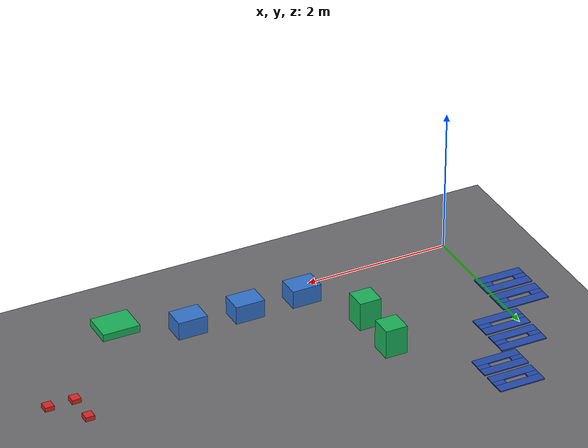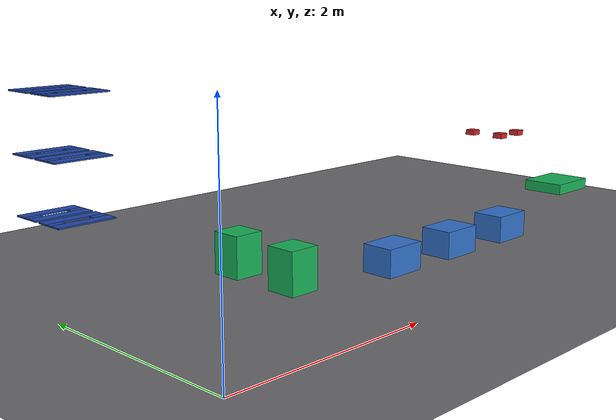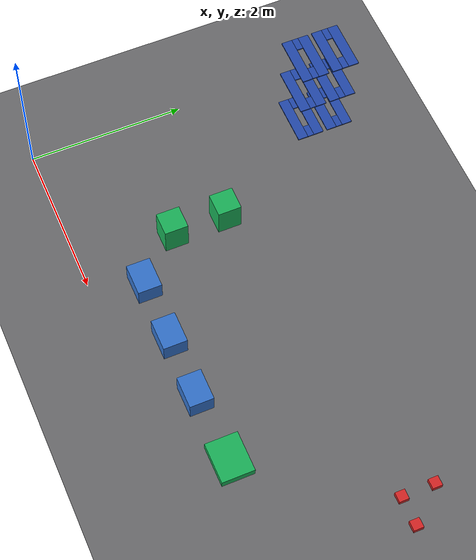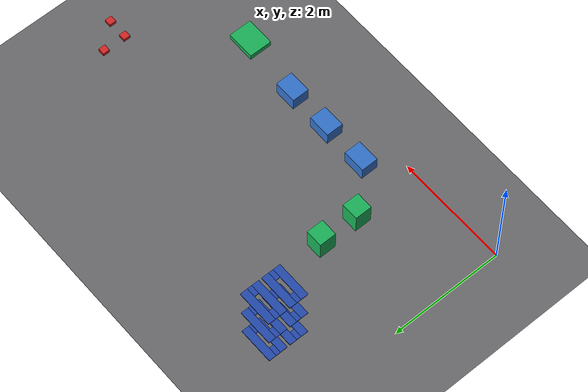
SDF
<sdf version="1.11">
 <world name="factory">
  <model name="ground_plane">
   <static>true</static>
   <link name="link">
    <collision name="collision">
     <geometry><plane><normal>0 0 1</normal><size>100 100</size></plane></geometry>
    </collision>
    <visual name="visual">
     <geometry><plane><normal>0 0 1</normal><size>100 100</size></plane></geometry>
     <material>
      <ambient>0.8 0.8 0.8 1</ambient>
      <diffuse>0.42 0.42 0.43 1</diffuse>
      <specular>0.04 0.04 0.04 1</specular>
      <shininess>4</shininess>
     </material>
    </visual>
   </link>
  </model>
  <model name="rl_objects">
   <static>false</static>
   <link name="part_a1">
    <pose>6.2 2.1 0.8 0 0 0</pose>
    <visual name="visual">
     <geometry><box><size>0.12 0.12 0.06</size></box></geometry>
     <material>
      <ambient>0.850 0.150 0.150 1.000</ambient>
      <diffuse>0.850 0.150 0.150 1.000</diffuse>
      <specular>0.30 0.30 0.30 1</specular>
      <shininess>24</shininess>
     </material>
    </visual>
    <collision name="collision"><geometry><box><size>0.12 0.12 0.06</size></box></geometry></collision>
    <inertial>
     <mass>1.2</mass>
     <inertia>
      <ixx>0.001800</ixx>
      <iyy>0.001800</iyy>
      <izz>0.002880</izz>
      <ixy>0</ixy>
      <ixz>0</ixz>
      <iyz>0</iyz>
     </inertia>
    </inertial>
   </link>
   <link name="part_a2">
    <pose>6.55 2.1 0.8 0 0 0</pose>
    <visual name="visual">
     <geometry><box><size>0.12 0.12 0.06</size></box></geometry>
     <material>
      <ambient>0.850 0.150 0.150 1.000</ambient>
      <diffuse>0.850 0.150 0.150 1.000</diffuse>
      <specular>0.30 0.30 0.30 1</specular>
      <shininess>24</shininess>
     </material>
    </visual>
    <collision name="collision"><geometry><box><size>0.12 0.12 0.06</size></box></geometry></collision>
    <inertial>
     <mass>1.2</mass>
     <inertia>
      <ixx>0.001800</ixx>
      <iyy>0.001800</iyy>
      <izz>0.002880</izz>
      <ixy>0</ixy>
      <ixz>0</ixz>
      <iyz>0</iyz>
     </inertia>
    </inertial>
   </link>
   <link name="part_a3">
    <pose>6.2 2.5 0.8 0 0 0</pose>
    <visual name="visual">
     <geometry><box><size>0.12 0.12 0.06</size></box></geometry>
     <material>
      <ambient>0.850 0.150 0.150 1.000</ambient>
      <diffuse>0.850 0.150 0.150 1.000</diffuse>
      <specular>0.30 0.30 0.30 1</specular>
      <shininess>24</shininess>
     </material>
    </visual>
    <collision name="collision"><geometry><box><size>0.12 0.12 0.06</size></box></geometry></collision>
    <inertial>
     <mass>1.2</mass>
     <inertia>
      <ixx>0.001800</ixx>
      <iyy>0.001800</iyy>
      <izz>0.002880</izz>
      <ixy>0</ixy>
      <ixz>0</ixz>
      <iyz>0</iyz>
     </inertia>
    </inertial>
   </link>
   <link name="stock_s1">
    <pose>2.4 0.6 0.35 0 0 0</pose>
    <visual name="visual">
     <geometry><box><size>0.4 0.3 0.25</size></box></geometry>
     <material>
      <ambient>0.200 0.450 0.800 1.000</ambient>
      <diffuse>0.200 0.450 0.800 1.000</diffuse>
      <specular>0.30 0.30 0.30 1</specular>
      <shininess>24</shininess>
     </material>
    </visual>
    <collision name="collision"><geometry><box><size>0.4 0.3 0.25</size></box></geometry></collision>
    <inertial>
     <mass>4.0</mass>
     <inertia>
      <ixx>0.050833</ixx>
      <iyy>0.074167</iyy>
      <izz>0.083333</izz>
      <ixy>0</ixy>
      <ixz>0</ixz>
      <iyz>0</iyz>
     </inertia>
    </inertial>
   </link>
   <link name="stock_s2">
    <pose>3.2 0.6 0.35 0 0 0</pose>
    <visual name="visual">
     <geometry><box><size>0.4 0.3 0.25</size></box></geometry>
     <material>
      <ambient>0.200 0.450 0.800 1.000</ambient>
      <diffuse>0.200 0.450 0.800 1.000</diffuse>
      <specular>0.30 0.30 0.30 1</specular>
      <shininess>24</shininess>
     </material>
    </visual>
    <collision name="collision"><geometry><box><size>0.4 0.3 0.25</size></box></geometry></collision>
    <inertial>
     <mass>4.0</mass>
     <inertia>
      <ixx>0.050833</ixx>
      <iyy>0.074167</iyy>
      <izz>0.083333</izz>
      <ixy>0</ixy>
      <ixz>0</ixz>
      <iyz>0</iyz>
     </inertia>
    </inertial>
   </link>
   <link name="stock_s3">
    <pose>4 0.6 0.35 0 0 0</pose>
    <visual name="visual">
     <geometry><box><size>0.4 0.3 0.25</size></box></geometry>
     <material>
      <ambient>0.200 0.450 0.800 1.000</ambient>
      <diffuse>0.200 0.450 0.800 1.000</diffuse>
      <specular>0.30 0.30 0.30 1</specular>
      <shininess>24</shininess>
     </material>
    </visual>
    <collision name="collision"><geometry><box><size>0.4 0.3 0.25</size></box></geometry></collision>
    <inertial>
     <mass>4.0</mass>
     <inertia>
      <ixx>0.050833</ixx>
      <iyy>0.074167</iyy>
      <izz>0.083333</izz>
      <ixy>0</ixy>
      <ixz>0</ixz>
      <iyz>0</iyz>
     </inertia>
    </inertial>
   </link>
   <link name="target_bin_a">
    <pose>1.8 1.2 0.25 0 0 0</pose>
    <visual name="visual">
     <geometry><box><size>0.3 0.3 0.4</size></box></geometry>
     <material>
      <ambient>0.100 0.700 0.350 1.000</ambient>
      <diffuse>0.100 0.700 0.350 1.000</diffuse>
      <specular>0.30 0.30 0.30 1</specular>
      <shininess>24</shininess>
     </material>
    </visual>
    <collision name="collision"><geometry><box><size>0.3 0.3 0.4</size></box></geometry></collision>
    <inertial>
     <mass>1.0</mass>
     <inertia>
      <ixx>0.020833</ixx>
      <iyy>0.020833</iyy>
      <izz>0.015000</izz>
      <ixy>0</ixy>
      <ixz>0</ixz>
      <iyz>0</iyz>
     </inertia>
    </inertial>
   </link>
   <link name="target_bin_b">
    <pose>1.8 1.9 0.25 0 0 0</pose>
    <visual name="visual">
     <geometry><box><size>0.3 0.3 0.4</size></box></geometry>
     <material>
      <ambient>0.100 0.700 0.350 1.000</ambient>
      <diffuse>0.100 0.700 0.350 1.000</diffuse>
      <specular>0.30 0.30 0.30 1</specular>
      <shininess>24</shininess>
     </material>
    </visual>
    <collision name="collision"><geometry><box><size>0.3 0.3 0.4</size></box></geometry></collision>
    <inertial>
     <mass>1.0</mass>
     <inertia>
      <ixx>0.020833</ixx>
      <iyy>0.020833</iyy>
      <izz>0.015000</izz>
      <ixy>0</ixy>
      <ixz>0</ixz>
      <iyz>0</iyz>
     </inertia>
    </inertial>
   </link>
   <link name="target_shelf">
    <pose>5 0.6 0.6 0 0 0</pose>
    <visual name="visual">
     <geometry><box><size>0.5 0.4 0.1</size></box></geometry>
     <material>
      <ambient>0.100 0.700 0.350 1.000</ambient>
      <diffuse>0.100 0.700 0.350 1.000</diffuse>
      <specular>0.30 0.30 0.30 1</specular>
      <shininess>24</shininess>
     </material>
    </visual>
    <collision name="collision"><geometry><box><size>0.5 0.4 0.1</size></box></geometry></collision>
    <inertial>
     <mass>1.0</mass>
     <inertia>
      <ixx>0.014167</ixx>
      <iyy>0.021667</iyy>
      <izz>0.034167</izz>
      <ixy>0</ixy>
      <ixz>0</ixz>
      <iyz>0</iyz>
     </inertia>
    </inertial>
   </link>
  </model>
  <model name="safety_zones">
   <static>true</static>
   <link name="zone-arms-cell"><pose>6.4013 2.6979 1.1508 0 0 0</pose></link>
   <link name="zone-arms-reach"><pose>6.4013 2.6979 1.1508 0 0 0</pose></link>
   <link name="zone-conveyor-cell"><pose>6.0730 2.3373 1.0287 0 0 0</pose></link>
   <link name="zone-fabrication-floor"><pose>3.9370 2.4155 1.0287 0 0 0</pose></link>
  </model>
  <model name="fridge_conveyor">
   <static>true</static>
   <link name="belt_frame">
    <visual name="fridge_freezer_l0_belt0">
     <geometry><box><size>0.62 0.13 0.014</size></box></geometry>
     <pose>1.01 3.165 0.45 0 0 0</pose>
     <material>
      <ambient>0.04 0.08 0.18 1</ambient>
      <diffuse>0.14 0.29 0.68 1</diffuse>
      <specular>0.30 0.32 0.36 1</specular>
      <shininess>32</shininess>
     </material>
    </visual>
    <visual name="fridge_freezer_l0_belt1">
     <geometry><box><size>0.62 0.13 0.014</size></box></geometry>
     <pose>1.01 3.375 0.45 0 0 0</pose>
     <material>
      <ambient>0.04 0.08 0.18 1</ambient>
      <diffuse>0.14 0.29 0.68 1</diffuse>
      <specular>0.30 0.32 0.36 1</specular>
      <shininess>32</shininess>
     </material>
    </visual>
    <visual name="fridge_freezer_l0_ret0">
     <geometry><box><size>0.16 0.08 0.014</size></box></geometry>
     <pose>0.78 3.27 0.45 0 0 0</pose>
     <material>
      <ambient>0.04 0.08 0.18 1</ambient>
      <diffuse>0.14 0.29 0.68 1</diffuse>
      <specular>0.30 0.32 0.36 1</specular>
      <shininess>32</shininess>
     </material>
    </visual>
    <visual name="fridge_freezer_l0_ret1">
     <geometry><box><size>0.16 0.08 0.014</size></box></geometry>
     <pose>1.24 3.27 0.45 0 0 0</pose>
     <material>
      <ambient>0.04 0.08 0.18 1</ambient>
      <diffuse>0.14 0.29 0.68 1</diffuse>
      <specular>0.30 0.32 0.36 1</specular>
      <shininess>32</shininess>
     </material>
    </visual>
    <visual name="fridge_freezer_l1_belt0">
     <geometry><box><size>0.62 0.13 0.014</size></box></geometry>
     <pose>1.01 3.555 0.45 0 0 0</pose>
     <material>
      <ambient>0.04 0.08 0.18 1</ambient>
      <diffuse>0.14 0.29 0.68 1</diffuse>
      <specular>0.30 0.32 0.36 1</specular>
      <shininess>32</shininess>
     </material>
    </visual>
    <visual name="fridge_freezer_l1_belt1">
     <geometry><box><size>0.62 0.13 0.014</size></box></geometry>
     <pose>1.01 3.765 0.45 0 0 0</pose>
     <material>
      <ambient>0.04 0.08 0.18 1</ambient>
      <diffuse>0.14 0.29 0.68 1</diffuse>
      <specular>0.30 0.32 0.36 1</specular>
      <shininess>32</shininess>
     </material>
    </visual>
    <visual name="fridge_freezer_l1_ret0">
     <geometry><box><size>0.16 0.08 0.014</size></box></geometry>
     <pose>0.78 3.66 0.45 0 0 0</pose>
     <material>
      <ambient>0.04 0.08 0.18 1</ambient>
      <diffuse>0.14 0.29 0.68 1</diffuse>
      <specular>0.30 0.32 0.36 1</specular>
      <shininess>32</shininess>
     </material>
    </visual>
    <visual name="fridge_freezer_l1_ret1">
     <geometry><box><size>0.16 0.08 0.014</size></box></geometry>
     <pose>1.24 3.66 0.45 0 0 0</pose>
     <material>
      <ambient>0.04 0.08 0.18 1</ambient>
      <diffuse>0.14 0.29 0.68 1</diffuse>
      <specular>0.30 0.32 0.36 1</specular>
      <shininess>32</shininess>
     </material>
    </visual>
    <visual name="fridge_fridge_l0_belt0">
     <geometry><box><size>0.62 0.13 0.014</size></box></geometry>
     <pose>1.01 3.165 1.05 0 0 0</pose>
     <material>
      <ambient>0.04 0.08 0.18 1</ambient>
      <diffuse>0.14 0.29 0.68 1</diffuse>
      <specular>0.30 0.32 0.36 1</specular>
      <shininess>32</shininess>
     </material>
    </visual>
    <visual name="fridge_fridge_l0_belt1">
     <geometry><box><size>0.62 0.13 0.014</size></box></geometry>
     <pose>1.01 3.375 1.05 0 0 0</pose>
     <material>
      <ambient>0.04 0.08 0.18 1</ambient>
      <diffuse>0.14 0.29 0.68 1</diffuse>
      <specular>0.30 0.32 0.36 1</specular>
      <shininess>32</shininess>
     </material>
    </visual>
    <visual name="fridge_fridge_l0_ret0">
     <geometry><box><size>0.16 0.08 0.014</size></box></geometry>
     <pose>0.78 3.27 1.05 0 0 0</pose>
     <material>
      <ambient>0.04 0.08 0.18 1</ambient>
      <diffuse>0.14 0.29 0.68 1</diffuse>
      <specular>0.30 0.32 0.36 1</specular>
      <shininess>32</shininess>
     </material>
    </visual>
    <visual name="fridge_fridge_l0_ret1">
     <geometry><box><size>0.16 0.08 0.014</size></box></geometry>
     <pose>1.24 3.27 1.05 0 0 0</pose>
     <material>
      <ambient>0.04 0.08 0.18 1</ambient>
      <diffuse>0.14 0.29 0.68 1</diffuse>
      <specular>0.30 0.32 0.36 1</specular>
      <shininess>32</shininess>
     </material>
    </visual>
    <visual name="fridge_fridge_l1_belt0">
     <geometry><box><size>0.62 0.13 0.014</size></box></geometry>
     <pose>1.01 3.555 1.05 0 0 0</pose>
     <material>
      <ambient>0.04 0.08 0.18 1</ambient>
      <diffuse>0.14 0.29 0.68 1</diffuse>
      <specular>0.30 0.32 0.36 1</specular>
      <shininess>32</shininess>
     </material>
    </visual>
    <visual name="fridge_fridge_l1_belt1">
     <geometry><box><size>0.62 0.13 0.014</size></box></geometry>
     <pose>1.01 3.765 1.05 0 0 0</pose>
     <material>
      <ambient>0.04 0.08 0.18 1</ambient>
      <diffuse>0.14 0.29 0.68 1</diffuse>
      <specular>0.30 0.32 0.36 1</specular>
      <shininess>32</shininess>
     </material>
    </visual>
    <visual name="fridge_fridge_l1_ret0">
     <geometry><box><size>0.16 0.08 0.014</size></box></geometry>
     <pose>0.78 3.66 1.05 0 0 0</pose>
     <material>
      <ambient>0.04 0.08 0.18 1</ambient>
      <diffuse>0.14 0.29 0.68 1</diffuse>
      <specular>0.30 0.32 0.36 1</specular>
      <shininess>32</shininess>
     </material>
    </visual>
    <visual name="fridge_fridge_l1_ret1">
     <geometry><box><size>0.16 0.08 0.014</size></box></geometry>
     <pose>1.24 3.66 1.05 0 0 0</pose>
     <material>
      <ambient>0.04 0.08 0.18 1</ambient>
      <diffuse>0.14 0.29 0.68 1</diffuse>
      <specular>0.30 0.32 0.36 1</specular>
      <shininess>32</shininess>
     </material>
    </visual>
    <visual name="fridge_pantry_l0_belt0">
     <geometry><box><size>0.62 0.13 0.014</size></box></geometry>
     <pose>1.01 3.165 1.65 0 0 0</pose>
     <material>
      <ambient>0.04 0.08 0.18 1</ambient>
      <diffuse>0.14 0.29 0.68 1</diffuse>
      <specular>0.30 0.32 0.36 1</specular>
      <shininess>32</shininess>
     </material>
    </visual>
    <visual name="fridge_pantry_l0_belt1">
     <geometry><box><size>0.62 0.13 0.014</size></box></geometry>
     <pose>1.01 3.375 1.65 0 0 0</pose>
     <material>
      <ambient>0.04 0.08 0.18 1</ambient>
      <diffuse>0.14 0.29 0.68 1</diffuse>
      <specular>0.30 0.32 0.36 1</specular>
      <shininess>32</shininess>
     </material>
    </visual>
    <visual name="fridge_pantry_l0_ret0">
     <geometry><box><size>0.16 0.08 0.014</size></box></geometry>
     <pose>0.78 3.27 1.65 0 0 0</pose>
     <material>
      <ambient>0.04 0.08 0.18 1</ambient>
      <diffuse>0.14 0.29 0.68 1</diffuse>
      <specular>0.30 0.32 0.36 1</specular>
      <shininess>32</shininess>
     </material>
    </visual>
    <visual name="fridge_pantry_l0_ret1">
     <geometry><box><size>0.16 0.08 0.014</size></box></geometry>
     <pose>1.24 3.27 1.65 0 0 0</pose>
     <material>
      <ambient>0.04 0.08 0.18 1</ambient>
      <diffuse>0.14 0.29 0.68 1</diffuse>
      <specular>0.30 0.32 0.36 1</specular>
      <shininess>32</shininess>
     </material>
    </visual>
    <visual name="fridge_pantry_l1_belt0">
     <geometry><box><size>0.62 0.13 0.014</size></box></geometry>
     <pose>1.01 3.555 1.65 0 0 0</pose>
     <material>
      <ambient>0.04 0.08 0.18 1</ambient>
      <diffuse>0.14 0.29 0.68 1</diffuse>
      <specular>0.30 0.32 0.36 1</specular>
      <shininess>32</shininess>
     </material>
    </visual>
    <visual name="fridge_pantry_l1_belt1">
     <geometry><box><size>0.62 0.13 0.014</size></box></geometry>
     <pose>1.01 3.765 1.65 0 0 0</pose>
     <material>
      <ambient>0.04 0.08 0.18 1</ambient>
      <diffuse>0.14 0.29 0.68 1</diffuse>
      <specular>0.30 0.32 0.36 1</specular>
      <shininess>32</shininess>
     </material>
    </visual>
    <visual name="fridge_pantry_l1_ret0">
     <geometry><box><size>0.16 0.08 0.014</size></box></geometry>
     <pose>0.78 3.66 1.65 0 0 0</pose>
     <material>
      <ambient>0.04 0.08 0.18 1</ambient>
      <diffuse>0.14 0.29 0.68 1</diffuse>
      <specular>0.30 0.32 0.36 1</specular>
      <shininess>32</shininess>
     </material>
    </visual>
    <visual name="fridge_pantry_l1_ret1">
     <geometry><box><size>0.16 0.08 0.014</size></box></geometry>
     <pose>1.24 3.66 1.65 0 0 0</pose>
     <material>
      <ambient>0.04 0.08 0.18 1</ambient>
      <diffuse>0.14 0.29 0.68 1</diffuse>
      <specular>0.30 0.32 0.36 1</specular>
      <shininess>32</shininess>
     </material>
    </visual>
   </link>
  </model>
 </world>
</sdf>
